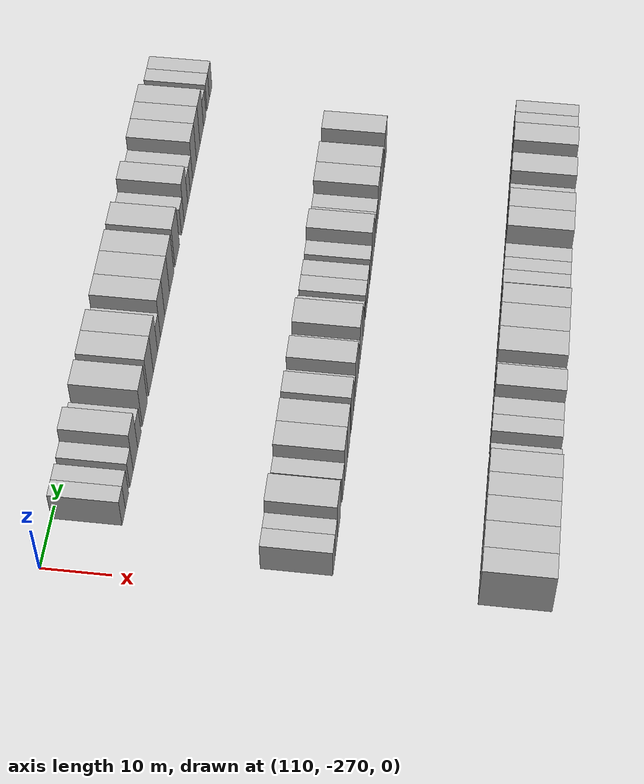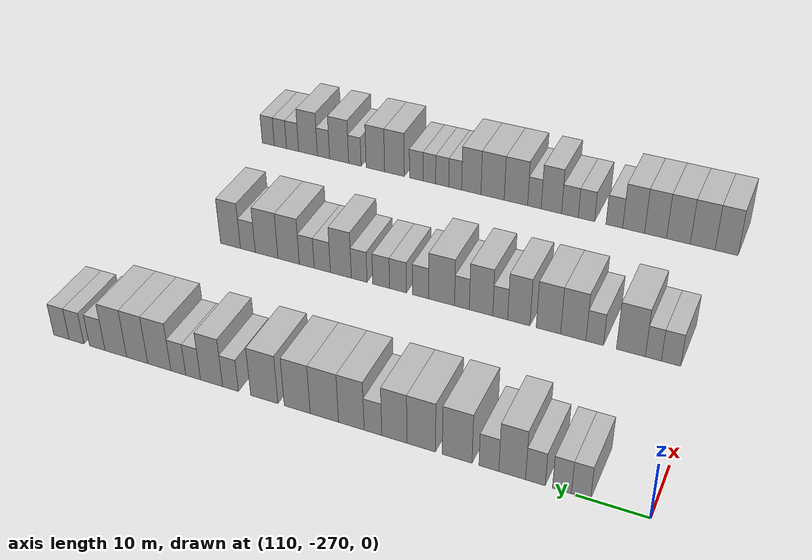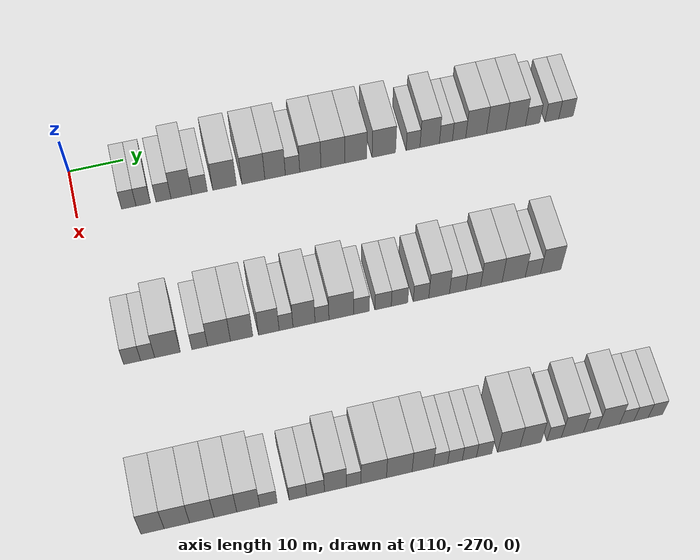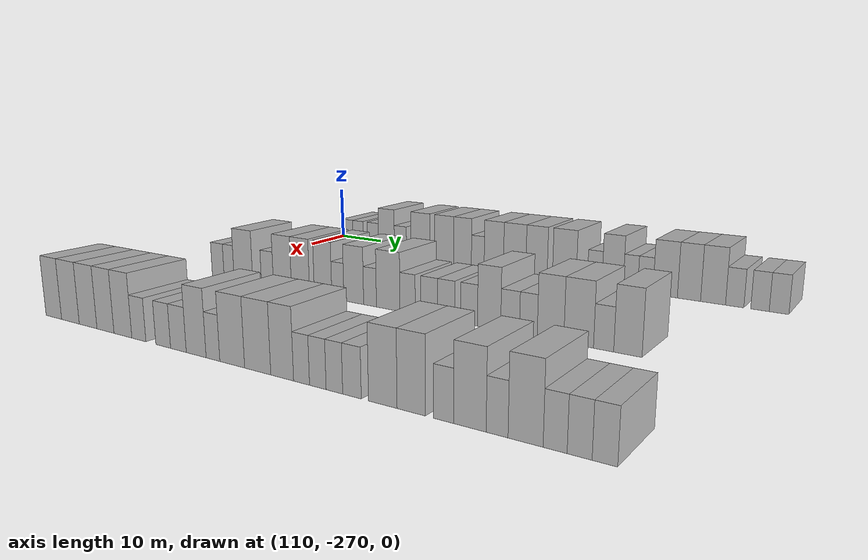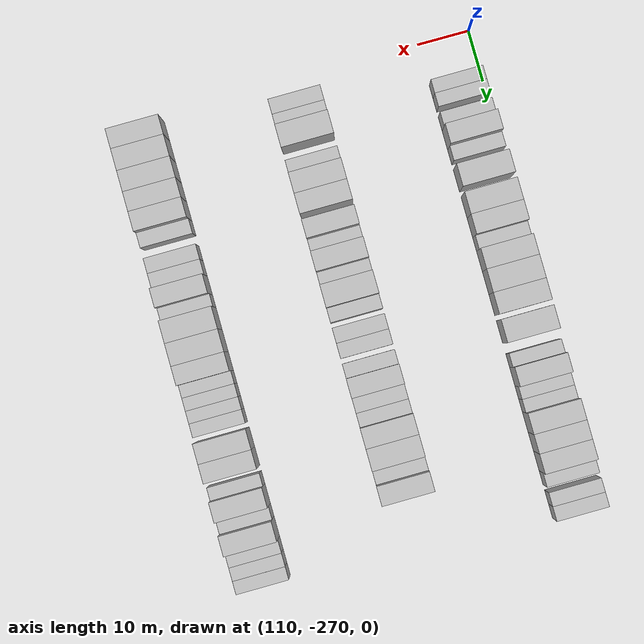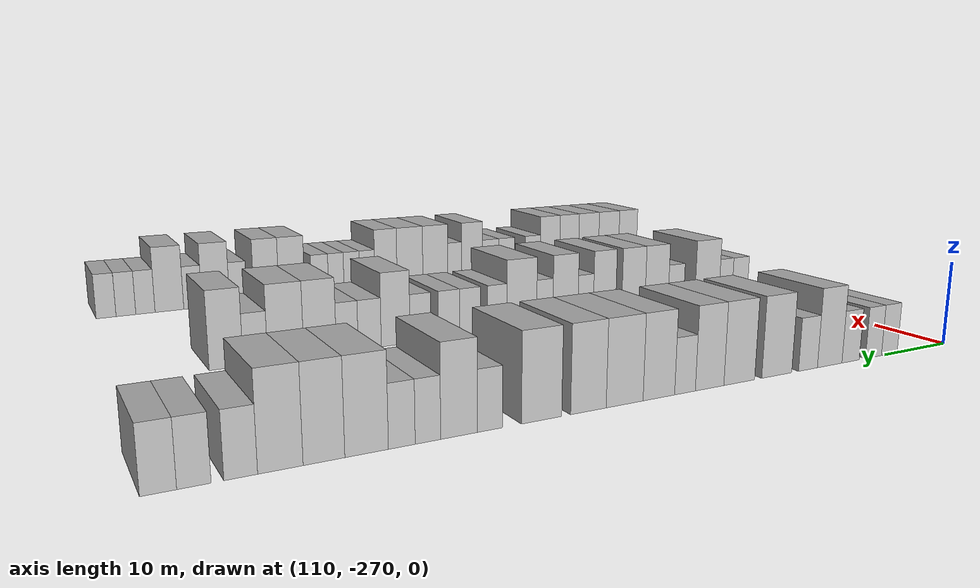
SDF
<sdf version="1.6">
 <world name="default">
  <model name="building_725">
   <static>1</static>
   <pose>115.0000 -260.6614 0 0.000000 0.000000 0.000000</pose>
   <link name="link">
    <pose>0 0 3.00 0 0 0</pose>
    <collision name="collision"><geometry><box><size>10.0000 2.6277 6.0000</size></box></geometry></collision>
    <visual name="visual">
     <cast_shadows>0</cast_shadows>
     <geometry><box><size>10.0000 2.6277 6.0000</size></box></geometry>
     <material>
      <script>
       <uri>model://HANNAS_wall/materials/scripts</uri>
       <uri>model://HANNAS_wall/materials/textures</uri>
       <name>vrc/HANNAS_wall</name>
      </script>
     </material>
    </visual>
   </link>
  </model>
  <model name="building_726">
   <static>1</static>
   <pose>115.0000 -258.0418 0 0.000000 0.000000 0.000000</pose>
   <link name="link">
    <pose>0 0 3.00 0 0 0</pose>
    <collision name="collision"><geometry><box><size>10.0000 2.6117 6.0000</size></box></geometry></collision>
    <visual name="visual">
     <cast_shadows>0</cast_shadows>
     <geometry><box><size>10.0000 2.6117 6.0000</size></box></geometry>
     <material>
      <script>
       <uri>model://HANNAS_wall/materials/scripts</uri>
       <uri>model://HANNAS_wall/materials/textures</uri>
       <name>vrc/HANNAS_wall</name>
      </script>
     </material>
    </visual>
   </link>
  </model>
  <model name="building_727">
   <static>1</static>
   <pose>115.0000 -254.3580 0 0.000000 0.000000 0.000000</pose>
   <link name="link">
    <pose>0 0 3.00 0 0 0</pose>
    <collision name="collision"><geometry><box><size>10.0000 2.7559 6.0000</size></box></geometry></collision>
    <visual name="visual">
     <cast_shadows>0</cast_shadows>
     <geometry><box><size>10.0000 2.7559 6.0000</size></box></geometry>
     <material>
      <script>
       <uri>model://HANNAS_wall/materials/scripts</uri>
       <uri>model://HANNAS_wall/materials/textures</uri>
       <name>vrc/HANNAS_wall</name>
      </script>
     </material>
    </visual>
   </link>
  </model>
  <model name="building_728">
   <static>1</static>
   <pose>115.0000 -251.0845 0 0.000000 0.000000 0.000000</pose>
   <link name="link">
    <pose>0 0 4.50 0 0 0</pose>
    <collision name="collision"><geometry><box><size>10.0000 3.7910 9.0000</size></box></geometry></collision>
    <visual name="visual">
     <cast_shadows>0</cast_shadows>
     <geometry><box><size>10.0000 3.7910 9.0000</size></box></geometry>
     <material>
      <script>
       <uri>model://HANNAS_wall/materials/scripts</uri>
       <uri>model://HANNAS_wall/materials/textures</uri>
       <name>vrc/HANNAS_wall</name>
      </script>
     </material>
    </visual>
   </link>
  </model>
  <model name="building_729">
   <static>1</static>
   <pose>115.0000 -247.7703 0 0.000000 0.000000 0.000000</pose>
   <link name="link">
    <pose>0 0 3.00 0 0 0</pose>
    <collision name="collision"><geometry><box><size>10.0000 2.8375 6.0000</size></box></geometry></collision>
    <visual name="visual">
     <cast_shadows>0</cast_shadows>
     <geometry><box><size>10.0000 2.8375 6.0000</size></box></geometry>
     <material>
      <script>
       <uri>model://HANNAS_wall/materials/scripts</uri>
       <uri>model://HANNAS_wall/materials/textures</uri>
       <name>vrc/HANNAS_wall</name>
      </script>
     </material>
    </visual>
   </link>
  </model>
  <model name="building_730">
   <static>1</static>
   <pose>115.0000 -243.1826 0 0.000000 0.000000 0.000000</pose>
   <link name="link">
    <pose>0 0 4.50 0 0 0</pose>
    <collision name="collision"><geometry><box><size>10.0000 4.3378 9.0000</size></box></geometry></collision>
    <visual name="visual">
     <cast_shadows>0</cast_shadows>
     <geometry><box><size>10.0000 4.3378 9.0000</size></box></geometry>
     <material>
      <script>
       <uri>model://HANNAS_wall/materials/scripts</uri>
       <uri>model://HANNAS_wall/materials/textures</uri>
       <name>vrc/HANNAS_wall</name>
      </script>
     </material>
    </visual>
   </link>
  </model>
  <model name="building_731">
   <static>1</static>
   <pose>115.0000 -237.8937 0 0.000000 0.000000 0.000000</pose>
   <link name="link">
    <pose>0 0 4.50 0 0 0</pose>
    <collision name="collision"><geometry><box><size>10.0000 4.2400 9.0000</size></box></geometry></collision>
    <visual name="visual">
     <cast_shadows>0</cast_shadows>
     <geometry><box><size>10.0000 4.2400 9.0000</size></box></geometry>
     <material>
      <script>
       <uri>model://HANNAS_wall/materials/scripts</uri>
       <uri>model://HANNAS_wall/materials/textures</uri>
       <name>vrc/HANNAS_wall</name>
      </script>
     </material>
    </visual>
   </link>
  </model>
  <model name="building_732">
   <static>1</static>
   <pose>115.0000 -233.8775 0 0.000000 0.000000 0.000000</pose>
   <link name="link">
    <pose>0 0 4.50 0 0 0</pose>
    <collision name="collision"><geometry><box><size>10.0000 3.7924 9.0000</size></box></geometry></collision>
    <visual name="visual">
     <cast_shadows>0</cast_shadows>
     <geometry><box><size>10.0000 3.7924 9.0000</size></box></geometry>
     <material>
      <script>
       <uri>model://HANNAS_wall/materials/scripts</uri>
       <uri>model://HANNAS_wall/materials/textures</uri>
       <name>vrc/HANNAS_wall</name>
      </script>
     </material>
    </visual>
   </link>
  </model>
  <model name="building_733">
   <static>1</static>
   <pose>115.0000 -230.6448 0 0.000000 0.000000 0.000000</pose>
   <link name="link">
    <pose>0 0 3.00 0 0 0</pose>
    <collision name="collision"><geometry><box><size>10.0000 2.6730 6.0000</size></box></geometry></collision>
    <visual name="visual">
     <cast_shadows>0</cast_shadows>
     <geometry><box><size>10.0000 2.6730 6.0000</size></box></geometry>
     <material>
      <script>
       <uri>model://HANNAS_wall/materials/scripts</uri>
       <uri>model://HANNAS_wall/materials/textures</uri>
       <name>vrc/HANNAS_wall</name>
      </script>
     </material>
    </visual>
   </link>
  </model>
  <model name="building_734">
   <static>1</static>
   <pose>115.0000 -227.3351 0 0.000000 0.000000 0.000000</pose>
   <link name="link">
    <pose>0 0 4.50 0 0 0</pose>
    <collision name="collision"><geometry><box><size>10.0000 3.9464 9.0000</size></box></geometry></collision>
    <visual name="visual">
     <cast_shadows>0</cast_shadows>
     <geometry><box><size>10.0000 3.9464 9.0000</size></box></geometry>
     <material>
      <script>
       <uri>model://HANNAS_wall/materials/scripts</uri>
       <uri>model://HANNAS_wall/materials/textures</uri>
       <name>vrc/HANNAS_wall</name>
      </script>
     </material>
    </visual>
   </link>
  </model>
  <model name="building_735">
   <static>1</static>
   <pose>115.0000 -223.1429 0 0.000000 0.000000 0.000000</pose>
   <link name="link">
    <pose>0 0 4.50 0 0 0</pose>
    <collision name="collision"><geometry><box><size>10.0000 4.4381 9.0000</size></box></geometry></collision>
    <visual name="visual">
     <cast_shadows>0</cast_shadows>
     <geometry><box><size>10.0000 4.4381 9.0000</size></box></geometry>
     <material>
      <script>
       <uri>model://HANNAS_wall/materials/scripts</uri>
       <uri>model://HANNAS_wall/materials/textures</uri>
       <name>vrc/HANNAS_wall</name>
      </script>
     </material>
    </visual>
   </link>
  </model>
  <model name="building_736">
   <static>1</static>
   <pose>115.0000 -218.8723 0 0.000000 0.000000 0.000000</pose>
   <link name="link">
    <pose>0 0 4.50 0 0 0</pose>
    <collision name="collision"><geometry><box><size>10.0000 4.1030 9.0000</size></box></geometry></collision>
    <visual name="visual">
     <cast_shadows>0</cast_shadows>
     <geometry><box><size>10.0000 4.1030 9.0000</size></box></geometry>
     <material>
      <script>
       <uri>model://HANNAS_wall/materials/scripts</uri>
       <uri>model://HANNAS_wall/materials/textures</uri>
       <name>vrc/HANNAS_wall</name>
      </script>
     </material>
    </visual>
   </link>
  </model>
  <model name="building_737">
   <static>1</static>
   <pose>115.0000 -213.6167 0 0.000000 0.000000 0.000000</pose>
   <link name="link">
    <pose>0 0 4.50 0 0 0</pose>
    <collision name="collision"><geometry><box><size>10.0000 4.4082 9.0000</size></box></geometry></collision>
    <visual name="visual">
     <cast_shadows>0</cast_shadows>
     <geometry><box><size>10.0000 4.4082 9.0000</size></box></geometry>
     <material>
      <script>
       <uri>model://HANNAS_wall/materials/scripts</uri>
       <uri>model://HANNAS_wall/materials/textures</uri>
       <name>vrc/HANNAS_wall</name>
      </script>
     </material>
    </visual>
   </link>
  </model>
  <model name="building_738">
   <static>1</static>
   <pose>115.0000 -208.1112 0 0.000000 0.000000 0.000000</pose>
   <link name="link">
    <pose>0 0 3.00 0 0 0</pose>
    <collision name="collision"><geometry><box><size>10.0000 2.6029 6.0000</size></box></geometry></collision>
    <visual name="visual">
     <cast_shadows>0</cast_shadows>
     <geometry><box><size>10.0000 2.6029 6.0000</size></box></geometry>
     <material>
      <script>
       <uri>model://HANNAS_wall/materials/scripts</uri>
       <uri>model://HANNAS_wall/materials/textures</uri>
       <name>vrc/HANNAS_wall</name>
      </script>
     </material>
    </visual>
   </link>
  </model>
  <model name="building_739">
   <static>1</static>
   <pose>115.0000 -204.9711 0 0.000000 0.000000 0.000000</pose>
   <link name="link">
    <pose>0 0 4.50 0 0 0</pose>
    <collision name="collision"><geometry><box><size>10.0000 3.6773 9.0000</size></box></geometry></collision>
    <visual name="visual">
     <cast_shadows>0</cast_shadows>
     <geometry><box><size>10.0000 3.6773 9.0000</size></box></geometry>
     <material>
      <script>
       <uri>model://HANNAS_wall/materials/scripts</uri>
       <uri>model://HANNAS_wall/materials/textures</uri>
       <name>vrc/HANNAS_wall</name>
      </script>
     </material>
    </visual>
   </link>
  </model>
  <model name="building_740">
   <static>1</static>
   <pose>115.0000 -201.8967 0 0.000000 0.000000 0.000000</pose>
   <link name="link">
    <pose>0 0 3.00 0 0 0</pose>
    <collision name="collision"><geometry><box><size>10.0000 2.4714 6.0000</size></box></geometry></collision>
    <visual name="visual">
     <cast_shadows>0</cast_shadows>
     <geometry><box><size>10.0000 2.4714 6.0000</size></box></geometry>
     <material>
      <script>
       <uri>model://HANNAS_wall/materials/scripts</uri>
       <uri>model://HANNAS_wall/materials/textures</uri>
       <name>vrc/HANNAS_wall</name>
      </script>
     </material>
    </visual>
   </link>
  </model>
  <model name="building_741">
   <static>1</static>
   <pose>115.0000 -199.3958 0 0.000000 0.000000 0.000000</pose>
   <link name="link">
    <pose>0 0 3.00 0 0 0</pose>
    <collision name="collision"><geometry><box><size>10.0000 2.5304 6.0000</size></box></geometry></collision>
    <visual name="visual">
     <cast_shadows>0</cast_shadows>
     <geometry><box><size>10.0000 2.5304 6.0000</size></box></geometry>
     <material>
      <script>
       <uri>model://HANNAS_wall/materials/scripts</uri>
       <uri>model://HANNAS_wall/materials/textures</uri>
       <name>vrc/HANNAS_wall</name>
      </script>
     </material>
    </visual>
   </link>
  </model>
  <model name="building_742">
   <static>1</static>
   <pose>115.0000 -196.1469 0 0.000000 0.000000 0.000000</pose>
   <link name="link">
    <pose>0 0 4.50 0 0 0</pose>
    <collision name="collision"><geometry><box><size>10.0000 3.9674 9.0000</size></box></geometry></collision>
    <visual name="visual">
     <cast_shadows>0</cast_shadows>
     <geometry><box><size>10.0000 3.9674 9.0000</size></box></geometry>
     <material>
      <script>
       <uri>model://HANNAS_wall/materials/scripts</uri>
       <uri>model://HANNAS_wall/materials/textures</uri>
       <name>vrc/HANNAS_wall</name>
      </script>
     </material>
    </visual>
   </link>
  </model>
  <model name="building_743">
   <static>1</static>
   <pose>115.0000 -192.3404 0 0.000000 0.000000 0.000000</pose>
   <link name="link">
    <pose>0 0 4.50 0 0 0</pose>
    <collision name="collision"><geometry><box><size>10.0000 3.6456 9.0000</size></box></geometry></collision>
    <visual name="visual">
     <cast_shadows>0</cast_shadows>
     <geometry><box><size>10.0000 3.6456 9.0000</size></box></geometry>
     <material>
      <script>
       <uri>model://HANNAS_wall/materials/scripts</uri>
       <uri>model://HANNAS_wall/materials/textures</uri>
       <name>vrc/HANNAS_wall</name>
      </script>
     </material>
    </visual>
   </link>
  </model>
  <model name="building_744">
   <static>1</static>
   <pose>115.0000 -188.6129 0 0.000000 0.000000 0.000000</pose>
   <link name="link">
    <pose>0 0 4.50 0 0 0</pose>
    <collision name="collision"><geometry><box><size>10.0000 3.8093 9.0000</size></box></geometry></collision>
    <visual name="visual">
     <cast_shadows>0</cast_shadows>
     <geometry><box><size>10.0000 3.8093 9.0000</size></box></geometry>
     <material>
      <script>
       <uri>model://HANNAS_wall/materials/scripts</uri>
       <uri>model://HANNAS_wall/materials/textures</uri>
       <name>vrc/HANNAS_wall</name>
      </script>
     </material>
    </visual>
   </link>
  </model>
  <model name="building_745">
   <static>1</static>
   <pose>115.0000 -185.3458 0 0.000000 0.000000 0.000000</pose>
   <link name="link">
    <pose>0 0 3.00 0 0 0</pose>
    <collision name="collision"><geometry><box><size>10.0000 2.7248 6.0000</size></box></geometry></collision>
    <visual name="visual">
     <cast_shadows>0</cast_shadows>
     <geometry><box><size>10.0000 2.7248 6.0000</size></box></geometry>
     <material>
      <script>
       <uri>model://HANNAS_wall/materials/scripts</uri>
       <uri>model://HANNAS_wall/materials/textures</uri>
       <name>vrc/HANNAS_wall</name>
      </script>
     </material>
    </visual>
   </link>
  </model>
  <model name="building_746">
   <static>1</static>
   <pose>115.0000 -181.6528 0 0.000000 0.000000 0.000000</pose>
   <link name="link">
    <pose>0 0 3.00 0 0 0</pose>
    <collision name="collision"><geometry><box><size>10.0000 2.6613 6.0000</size></box></geometry></collision>
    <visual name="visual">
     <cast_shadows>0</cast_shadows>
     <geometry><box><size>10.0000 2.6613 6.0000</size></box></geometry>
     <material>
      <script>
       <uri>model://HANNAS_wall/materials/scripts</uri>
       <uri>model://HANNAS_wall/materials/textures</uri>
       <name>vrc/HANNAS_wall</name>
      </script>
     </material>
    </visual>
   </link>
  </model>
  <model name="building_747">
   <static>1</static>
   <pose>115.0000 -178.9290 0 0.000000 0.000000 0.000000</pose>
   <link name="link">
    <pose>0 0 3.00 0 0 0</pose>
    <collision name="collision"><geometry><box><size>10.0000 2.7862 6.0000</size></box></geometry></collision>
    <visual name="visual">
     <cast_shadows>0</cast_shadows>
     <geometry><box><size>10.0000 2.7862 6.0000</size></box></geometry>
     <material>
      <script>
       <uri>model://HANNAS_wall/materials/scripts</uri>
       <uri>model://HANNAS_wall/materials/textures</uri>
       <name>vrc/HANNAS_wall</name>
      </script>
     </material>
    </visual>
   </link>
  </model>
  <model name="building_962">
   <static>1</static>
   <pose>145.0000 -265.1742 0 0.000000 0.000000 0.000000</pose>
   <link name="link">
    <pose>0 0 3.00 0 0 0</pose>
    <collision name="collision"><geometry><box><size>10.0000 2.9158 6.0000</size></box></geometry></collision>
    <visual name="visual">
     <cast_shadows>0</cast_shadows>
     <geometry><box><size>10.0000 2.9158 6.0000</size></box></geometry>
     <material>
      <script>
       <uri>model://HANNAS_wall/materials/scripts</uri>
       <uri>model://HANNAS_wall/materials/textures</uri>
       <name>vrc/HANNAS_wall</name>
      </script>
     </material>
    </visual>
   </link>
  </model>
  <model name="building_963">
   <static>1</static>
   <pose>145.0000 -262.4996 0 0.000000 0.000000 0.000000</pose>
   <link name="link">
    <pose>0 0 3.00 0 0 0</pose>
    <collision name="collision"><geometry><box><size>10.0000 2.4335 6.0000</size></box></geometry></collision>
    <visual name="visual">
     <cast_shadows>0</cast_shadows>
     <geometry><box><size>10.0000 2.4335 6.0000</size></box></geometry>
     <material>
      <script>
       <uri>model://HANNAS_wall/materials/scripts</uri>
       <uri>model://HANNAS_wall/materials/textures</uri>
       <name>vrc/HANNAS_wall</name>
      </script>
     </material>
    </visual>
   </link>
  </model>
  <model name="building_964">
   <static>1</static>
   <pose>145.0000 -259.0726 0 0.000000 0.000000 0.000000</pose>
   <link name="link">
    <pose>0 0 4.50 0 0 0</pose>
    <collision name="collision"><geometry><box><size>10.0000 4.4205 9.0000</size></box></geometry></collision>
    <visual name="visual">
     <cast_shadows>0</cast_shadows>
     <geometry><box><size>10.0000 4.4205 9.0000</size></box></geometry>
     <material>
      <script>
       <uri>model://HANNAS_wall/materials/scripts</uri>
       <uri>model://HANNAS_wall/materials/textures</uri>
       <name>vrc/HANNAS_wall</name>
      </script>
     </material>
    </visual>
   </link>
  </model>
  <model name="building_965">
   <static>1</static>
   <pose>145.0000 -253.4943 0 0.000000 0.000000 0.000000</pose>
   <link name="link">
    <pose>0 0 3.00 0 0 0</pose>
    <collision name="collision"><geometry><box><size>10.0000 2.7362 6.0000</size></box></geometry></collision>
    <visual name="visual">
     <cast_shadows>0</cast_shadows>
     <geometry><box><size>10.0000 2.7362 6.0000</size></box></geometry>
     <material>
      <script>
       <uri>model://HANNAS_wall/materials/scripts</uri>
       <uri>model://HANNAS_wall/materials/textures</uri>
       <name>vrc/HANNAS_wall</name>
      </script>
     </material>
    </visual>
   </link>
  </model>
  <model name="building_966">
   <static>1</static>
   <pose>145.0000 -250.1337 0 0.000000 0.000000 0.000000</pose>
   <link name="link">
    <pose>0 0 4.50 0 0 0</pose>
    <collision name="collision"><geometry><box><size>10.0000 3.9850 9.0000</size></box></geometry></collision>
    <visual name="visual">
     <cast_shadows>0</cast_shadows>
     <geometry><box><size>10.0000 3.9850 9.0000</size></box></geometry>
     <material>
      <script>
       <uri>model://HANNAS_wall/materials/scripts</uri>
       <uri>model://HANNAS_wall/materials/textures</uri>
       <name>vrc/HANNAS_wall</name>
      </script>
     </material>
    </visual>
   </link>
  </model>
  <model name="building_967">
   <static>1</static>
   <pose>145.0000 -246.1934 0 0.000000 0.000000 0.000000</pose>
   <link name="link">
    <pose>0 0 4.50 0 0 0</pose>
    <collision name="collision"><geometry><box><size>10.0000 3.8955 9.0000</size></box></geometry></collision>
    <visual name="visual">
     <cast_shadows>0</cast_shadows>
     <geometry><box><size>10.0000 3.8955 9.0000</size></box></geometry>
     <material>
      <script>
       <uri>model://HANNAS_wall/materials/scripts</uri>
       <uri>model://HANNAS_wall/materials/textures</uri>
       <name>vrc/HANNAS_wall</name>
      </script>
     </material>
    </visual>
   </link>
  </model>
  <model name="building_968">
   <static>1</static>
   <pose>145.0000 -241.4387 0 0.000000 0.000000 0.000000</pose>
   <link name="link">
    <pose>0 0 4.50 0 0 0</pose>
    <collision name="collision"><geometry><box><size>10.0000 3.6140 9.0000</size></box></geometry></collision>
    <visual name="visual">
     <cast_shadows>0</cast_shadows>
     <geometry><box><size>10.0000 3.6140 9.0000</size></box></geometry>
     <material>
      <script>
       <uri>model://HANNAS_wall/materials/scripts</uri>
       <uri>model://HANNAS_wall/materials/textures</uri>
       <name>vrc/HANNAS_wall</name>
      </script>
     </material>
    </visual>
   </link>
  </model>
  <model name="building_969">
   <static>1</static>
   <pose>145.0000 -238.4109 0 0.000000 0.000000 0.000000</pose>
   <link name="link">
    <pose>0 0 3.00 0 0 0</pose>
    <collision name="collision"><geometry><box><size>10.0000 2.4414 6.0000</size></box></geometry></collision>
    <visual name="visual">
     <cast_shadows>0</cast_shadows>
     <geometry><box><size>10.0000 2.4414 6.0000</size></box></geometry>
     <material>
      <script>
       <uri>model://HANNAS_wall/materials/scripts</uri>
       <uri>model://HANNAS_wall/materials/textures</uri>
       <name>vrc/HANNAS_wall</name>
      </script>
     </material>
    </visual>
   </link>
  </model>
  <model name="building_970">
   <static>1</static>
   <pose>145.0000 -235.2523 0 0.000000 0.000000 0.000000</pose>
   <link name="link">
    <pose>0 0 4.50 0 0 0</pose>
    <collision name="collision"><geometry><box><size>10.0000 3.8757 9.0000</size></box></geometry></collision>
    <visual name="visual">
     <cast_shadows>0</cast_shadows>
     <geometry><box><size>10.0000 3.8757 9.0000</size></box></geometry>
     <material>
      <script>
       <uri>model://HANNAS_wall/materials/scripts</uri>
       <uri>model://HANNAS_wall/materials/textures</uri>
       <name>vrc/HANNAS_wall</name>
      </script>
     </material>
    </visual>
   </link>
  </model>
  <model name="building_971">
   <static>1</static>
   <pose>145.0000 -232.0861 0 0.000000 0.000000 0.000000</pose>
   <link name="link">
    <pose>0 0 3.00 0 0 0</pose>
    <collision name="collision"><geometry><box><size>10.0000 2.4568 6.0000</size></box></geometry></collision>
    <visual name="visual">
     <cast_shadows>0</cast_shadows>
     <geometry><box><size>10.0000 2.4568 6.0000</size></box></geometry>
     <material>
      <script>
       <uri>model://HANNAS_wall/materials/scripts</uri>
       <uri>model://HANNAS_wall/materials/textures</uri>
       <name>vrc/HANNAS_wall</name>
      </script>
     </material>
    </visual>
   </link>
  </model>
  <model name="building_972">
   <static>1</static>
   <pose>145.0000 -228.6676 0 0.000000 0.000000 0.000000</pose>
   <link name="link">
    <pose>0 0 4.50 0 0 0</pose>
    <collision name="collision"><geometry><box><size>10.0000 4.3801 9.0000</size></box></geometry></collision>
    <visual name="visual">
     <cast_shadows>0</cast_shadows>
     <geometry><box><size>10.0000 4.3801 9.0000</size></box></geometry>
     <material>
      <script>
       <uri>model://HANNAS_wall/materials/scripts</uri>
       <uri>model://HANNAS_wall/materials/textures</uri>
       <name>vrc/HANNAS_wall</name>
      </script>
     </material>
    </visual>
   </link>
  </model>
  <model name="building_973">
   <static>1</static>
   <pose>145.0000 -225.0924 0 0.000000 0.000000 0.000000</pose>
   <link name="link">
    <pose>0 0 3.00 0 0 0</pose>
    <collision name="collision"><geometry><box><size>10.0000 2.7704 6.0000</size></box></geometry></collision>
    <visual name="visual">
     <cast_shadows>0</cast_shadows>
     <geometry><box><size>10.0000 2.7704 6.0000</size></box></geometry>
     <material>
      <script>
       <uri>model://HANNAS_wall/materials/scripts</uri>
       <uri>model://HANNAS_wall/materials/textures</uri>
       <name>vrc/HANNAS_wall</name>
      </script>
     </material>
    </visual>
   </link>
  </model>
  <model name="building_974">
   <static>1</static>
   <pose>145.0000 -221.2460 0 0.000000 0.000000 0.000000</pose>
   <link name="link">
    <pose>0 0 3.00 0 0 0</pose>
    <collision name="collision"><geometry><box><size>10.0000 2.9225 6.0000</size></box></geometry></collision>
    <visual name="visual">
     <cast_shadows>0</cast_shadows>
     <geometry><box><size>10.0000 2.9225 6.0000</size></box></geometry>
     <material>
      <script>
       <uri>model://HANNAS_wall/materials/scripts</uri>
       <uri>model://HANNAS_wall/materials/textures</uri>
       <name>vrc/HANNAS_wall</name>
      </script>
     </material>
    </visual>
   </link>
  </model>
  <model name="building_975">
   <static>1</static>
   <pose>145.0000 -218.3224 0 0.000000 0.000000 0.000000</pose>
   <link name="link">
    <pose>0 0 3.00 0 0 0</pose>
    <collision name="collision"><geometry><box><size>10.0000 2.9247 6.0000</size></box></geometry></collision>
    <visual name="visual">
     <cast_shadows>0</cast_shadows>
     <geometry><box><size>10.0000 2.9247 6.0000</size></box></geometry>
     <material>
      <script>
       <uri>model://HANNAS_wall/materials/scripts</uri>
       <uri>model://HANNAS_wall/materials/textures</uri>
       <name>vrc/HANNAS_wall</name>
      </script>
     </material>
    </visual>
   </link>
  </model>
  <model name="building_976">
   <static>1</static>
   <pose>145.0000 -214.4735 0 0.000000 0.000000 0.000000</pose>
   <link name="link">
    <pose>0 0 3.00 0 0 0</pose>
    <collision name="collision"><geometry><box><size>10.0000 2.7730 6.0000</size></box></geometry></collision>
    <visual name="visual">
     <cast_shadows>0</cast_shadows>
     <geometry><box><size>10.0000 2.7730 6.0000</size></box></geometry>
     <material>
      <script>
       <uri>model://HANNAS_wall/materials/scripts</uri>
       <uri>model://HANNAS_wall/materials/textures</uri>
       <name>vrc/HANNAS_wall</name>
      </script>
     </material>
    </visual>
   </link>
  </model>
  <model name="building_977">
   <static>1</static>
   <pose>145.0000 -211.2244 0 0.000000 0.000000 0.000000</pose>
   <link name="link">
    <pose>0 0 4.50 0 0 0</pose>
    <collision name="collision"><geometry><box><size>10.0000 3.7254 9.0000</size></box></geometry></collision>
    <visual name="visual">
     <cast_shadows>0</cast_shadows>
     <geometry><box><size>10.0000 3.7254 9.0000</size></box></geometry>
     <material>
      <script>
       <uri>model://HANNAS_wall/materials/scripts</uri>
       <uri>model://HANNAS_wall/materials/textures</uri>
       <name>vrc/HANNAS_wall</name>
      </script>
     </material>
    </visual>
   </link>
  </model>
  <model name="building_978">
   <static>1</static>
   <pose>145.0000 -207.9054 0 0.000000 0.000000 0.000000</pose>
   <link name="link">
    <pose>0 0 3.00 0 0 0</pose>
    <collision name="collision"><geometry><box><size>10.0000 2.9127 6.0000</size></box></geometry></collision>
    <visual name="visual">
     <cast_shadows>0</cast_shadows>
     <geometry><box><size>10.0000 2.9127 6.0000</size></box></geometry>
     <material>
      <script>
       <uri>model://HANNAS_wall/materials/scripts</uri>
       <uri>model://HANNAS_wall/materials/textures</uri>
       <name>vrc/HANNAS_wall</name>
      </script>
     </material>
    </visual>
   </link>
  </model>
  <model name="building_979">
   <static>1</static>
   <pose>145.0000 -205.1039 0 0.000000 0.000000 0.000000</pose>
   <link name="link">
    <pose>0 0 3.00 0 0 0</pose>
    <collision name="collision"><geometry><box><size>10.0000 2.6902 6.0000</size></box></geometry></collision>
    <visual name="visual">
     <cast_shadows>0</cast_shadows>
     <geometry><box><size>10.0000 2.6902 6.0000</size></box></geometry>
     <material>
      <script>
       <uri>model://HANNAS_wall/materials/scripts</uri>
       <uri>model://HANNAS_wall/materials/textures</uri>
       <name>vrc/HANNAS_wall</name>
      </script>
     </material>
    </visual>
   </link>
  </model>
  <model name="building_980">
   <static>1</static>
   <pose>145.0000 -201.8045 0 0.000000 0.000000 0.000000</pose>
   <link name="link">
    <pose>0 0 4.50 0 0 0</pose>
    <collision name="collision"><geometry><box><size>10.0000 3.9087 9.0000</size></box></geometry></collision>
    <visual name="visual">
     <cast_shadows>0</cast_shadows>
     <geometry><box><size>10.0000 3.9087 9.0000</size></box></geometry>
     <material>
      <script>
       <uri>model://HANNAS_wall/materials/scripts</uri>
       <uri>model://HANNAS_wall/materials/textures</uri>
       <name>vrc/HANNAS_wall</name>
      </script>
     </material>
    </visual>
   </link>
  </model>
  <model name="building_981">
   <static>1</static>
   <pose>145.0000 -197.7500 0 0.000000 0.000000 0.000000</pose>
   <link name="link">
    <pose>0 0 4.50 0 0 0</pose>
    <collision name="collision"><geometry><box><size>10.0000 4.2001 9.0000</size></box></geometry></collision>
    <visual name="visual">
     <cast_shadows>0</cast_shadows>
     <geometry><box><size>10.0000 4.2001 9.0000</size></box></geometry>
     <material>
      <script>
       <uri>model://HANNAS_wall/materials/scripts</uri>
       <uri>model://HANNAS_wall/materials/textures</uri>
       <name>vrc/HANNAS_wall</name>
      </script>
     </material>
    </visual>
   </link>
  </model>
  <model name="building_982">
   <static>1</static>
   <pose>145.0000 -194.2685 0 0.000000 0.000000 0.000000</pose>
   <link name="link">
    <pose>0 0 3.00 0 0 0</pose>
    <collision name="collision"><geometry><box><size>10.0000 2.7630 6.0000</size></box></geometry></collision>
    <visual name="visual">
     <cast_shadows>0</cast_shadows>
     <geometry><box><size>10.0000 2.7630 6.0000</size></box></geometry>
     <material>
      <script>
       <uri>model://HANNAS_wall/materials/scripts</uri>
       <uri>model://HANNAS_wall/materials/textures</uri>
       <name>vrc/HANNAS_wall</name>
      </script>
     </material>
    </visual>
   </link>
  </model>
  <model name="building_983">
   <static>1</static>
   <pose>145.0000 -191.0099 0 0.000000 0.000000 0.000000</pose>
   <link name="link">
    <pose>0 0 4.50 0 0 0</pose>
    <collision name="collision"><geometry><box><size>10.0000 3.7541 9.0000</size></box></geometry></collision>
    <visual name="visual">
     <cast_shadows>0</cast_shadows>
     <geometry><box><size>10.0000 3.7541 9.0000</size></box></geometry>
     <material>
      <script>
       <uri>model://HANNAS_wall/materials/scripts</uri>
       <uri>model://HANNAS_wall/materials/textures</uri>
       <name>vrc/HANNAS_wall</name>
      </script>
     </material>
    </visual>
   </link>
  </model>
  <model name="building_1180">
   <static>1</static>
   <pose>175.0000 -266.9580 0 0.000000 0.000000 0.000000</pose>
   <link name="link">
    <pose>0 0 4.50 0 0 0</pose>
    <collision name="collision"><geometry><box><size>10.0000 3.7888 9.0000</size></box></geometry></collision>
    <visual name="visual">
     <cast_shadows>0</cast_shadows>
     <geometry><box><size>10.0000 3.7888 9.0000</size></box></geometry>
     <material>
      <script>
       <uri>model://HANNAS_wall/materials/scripts</uri>
       <uri>model://HANNAS_wall/materials/textures</uri>
       <name>vrc/HANNAS_wall</name>
      </script>
     </material>
    </visual>
   </link>
  </model>
  <model name="building_1181">
   <static>1</static>
   <pose>175.0000 -262.9842 0 0.000000 0.000000 0.000000</pose>
   <link name="link">
    <pose>0 0 4.50 0 0 0</pose>
    <collision name="collision"><geometry><box><size>10.0000 4.1588 9.0000</size></box></geometry></collision>
    <visual name="visual">
     <cast_shadows>0</cast_shadows>
     <geometry><box><size>10.0000 4.1588 9.0000</size></box></geometry>
     <material>
      <script>
       <uri>model://HANNAS_wall/materials/scripts</uri>
       <uri>model://HANNAS_wall/materials/textures</uri>
       <name>vrc/HANNAS_wall</name>
      </script>
     </material>
    </visual>
   </link>
  </model>
  <model name="building_1182">
   <static>1</static>
   <pose>175.0000 -258.8930 0 0.000000 0.000000 0.000000</pose>
   <link name="link">
    <pose>0 0 4.50 0 0 0</pose>
    <collision name="collision"><geometry><box><size>10.0000 4.0236 9.0000</size></box></geometry></collision>
    <visual name="visual">
     <cast_shadows>0</cast_shadows>
     <geometry><box><size>10.0000 4.0236 9.0000</size></box></geometry>
     <material>
      <script>
       <uri>model://HANNAS_wall/materials/scripts</uri>
       <uri>model://HANNAS_wall/materials/textures</uri>
       <name>vrc/HANNAS_wall</name>
      </script>
     </material>
    </visual>
   </link>
  </model>
  <model name="building_1183">
   <static>1</static>
   <pose>175.0000 -255.0095 0 0.000000 0.000000 0.000000</pose>
   <link name="link">
    <pose>0 0 4.50 0 0 0</pose>
    <collision name="collision"><geometry><box><size>10.0000 3.7435 9.0000</size></box></geometry></collision>
    <visual name="visual">
     <cast_shadows>0</cast_shadows>
     <geometry><box><size>10.0000 3.7435 9.0000</size></box></geometry>
     <material>
      <script>
       <uri>model://HANNAS_wall/materials/scripts</uri>
       <uri>model://HANNAS_wall/materials/textures</uri>
       <name>vrc/HANNAS_wall</name>
      </script>
     </material>
    </visual>
   </link>
  </model>
  <model name="building_1184">
   <static>1</static>
   <pose>175.0000 -251.2451 0 0.000000 0.000000 0.000000</pose>
   <link name="link">
    <pose>0 0 4.50 0 0 0</pose>
    <collision name="collision"><geometry><box><size>10.0000 3.7854 9.0000</size></box></geometry></collision>
    <visual name="visual">
     <cast_shadows>0</cast_shadows>
     <geometry><box><size>10.0000 3.7854 9.0000</size></box></geometry>
     <material>
      <script>
       <uri>model://HANNAS_wall/materials/scripts</uri>
       <uri>model://HANNAS_wall/materials/textures</uri>
       <name>vrc/HANNAS_wall</name>
      </script>
     </material>
    </visual>
   </link>
  </model>
  <model name="building_1185">
   <static>1</static>
   <pose>175.0000 -247.9066 0 0.000000 0.000000 0.000000</pose>
   <link name="link">
    <pose>0 0 3.00 0 0 0</pose>
    <collision name="collision"><geometry><box><size>10.0000 2.8914 6.0000</size></box></geometry></collision>
    <visual name="visual">
     <cast_shadows>0</cast_shadows>
     <geometry><box><size>10.0000 2.8914 6.0000</size></box></geometry>
     <material>
      <script>
       <uri>model://HANNAS_wall/materials/scripts</uri>
       <uri>model://HANNAS_wall/materials/textures</uri>
       <name>vrc/HANNAS_wall</name>
      </script>
     </material>
    </visual>
   </link>
  </model>
  <model name="building_1186">
   <static>1</static>
   <pose>175.0000 -243.0135 0 0.000000 0.000000 0.000000</pose>
   <link name="link">
    <pose>0 0 3.00 0 0 0</pose>
    <collision name="collision"><geometry><box><size>10.0000 2.8948 6.0000</size></box></geometry></collision>
    <visual name="visual">
     <cast_shadows>0</cast_shadows>
     <geometry><box><size>10.0000 2.8948 6.0000</size></box></geometry>
     <material>
      <script>
       <uri>model://HANNAS_wall/materials/scripts</uri>
       <uri>model://HANNAS_wall/materials/textures</uri>
       <name>vrc/HANNAS_wall</name>
      </script>
     </material>
    </visual>
   </link>
  </model>
  <model name="building_1187">
   <static>1</static>
   <pose>175.0000 -240.0733 0 0.000000 0.000000 0.000000</pose>
   <link name="link">
    <pose>0 0 3.00 0 0 0</pose>
    <collision name="collision"><geometry><box><size>10.0000 2.9858 6.0000</size></box></geometry></collision>
    <visual name="visual">
     <cast_shadows>0</cast_shadows>
     <geometry><box><size>10.0000 2.9858 6.0000</size></box></geometry>
     <material>
      <script>
       <uri>model://HANNAS_wall/materials/scripts</uri>
       <uri>model://HANNAS_wall/materials/textures</uri>
       <name>vrc/HANNAS_wall</name>
      </script>
     </material>
    </visual>
   </link>
  </model>
  <model name="building_1188">
   <static>1</static>
   <pose>175.0000 -236.7480 0 0.000000 0.000000 0.000000</pose>
   <link name="link">
    <pose>0 0 4.50 0 0 0</pose>
    <collision name="collision"><geometry><box><size>10.0000 3.6647 9.0000</size></box></geometry></collision>
    <visual name="visual">
     <cast_shadows>0</cast_shadows>
     <geometry><box><size>10.0000 3.6647 9.0000</size></box></geometry>
     <material>
      <script>
       <uri>model://HANNAS_wall/materials/scripts</uri>
       <uri>model://HANNAS_wall/materials/textures</uri>
       <name>vrc/HANNAS_wall</name>
      </script>
     </material>
    </visual>
   </link>
  </model>
  <model name="building_1189">
   <static>1</static>
   <pose>175.0000 -233.6890 0 0.000000 0.000000 0.000000</pose>
   <link name="link">
    <pose>0 0 3.00 0 0 0</pose>
    <collision name="collision"><geometry><box><size>10.0000 2.4534 6.0000</size></box></geometry></collision>
    <visual name="visual">
     <cast_shadows>0</cast_shadows>
     <geometry><box><size>10.0000 2.4534 6.0000</size></box></geometry>
     <material>
      <script>
       <uri>model://HANNAS_wall/materials/scripts</uri>
       <uri>model://HANNAS_wall/materials/textures</uri>
       <name>vrc/HANNAS_wall</name>
      </script>
     </material>
    </visual>
   </link>
  </model>
  <model name="building_1190">
   <static>1</static>
   <pose>175.0000 -230.3172 0 0.000000 0.000000 0.000000</pose>
   <link name="link">
    <pose>0 0 4.50 0 0 0</pose>
    <collision name="collision"><geometry><box><size>10.0000 4.2902 9.0000</size></box></geometry></collision>
    <visual name="visual">
     <cast_shadows>0</cast_shadows>
     <geometry><box><size>10.0000 4.2902 9.0000</size></box></geometry>
     <material>
      <script>
       <uri>model://HANNAS_wall/materials/scripts</uri>
       <uri>model://HANNAS_wall/materials/textures</uri>
       <name>vrc/HANNAS_wall</name>
      </script>
     </material>
    </visual>
   </link>
  </model>
  <model name="building_1191">
   <static>1</static>
   <pose>175.0000 -226.0100 0 0.000000 0.000000 0.000000</pose>
   <link name="link">
    <pose>0 0 4.50 0 0 0</pose>
    <collision name="collision"><geometry><box><size>10.0000 4.3242 9.0000</size></box></geometry></collision>
    <visual name="visual">
     <cast_shadows>0</cast_shadows>
     <geometry><box><size>10.0000 4.3242 9.0000</size></box></geometry>
     <material>
      <script>
       <uri>model://HANNAS_wall/materials/scripts</uri>
       <uri>model://HANNAS_wall/materials/textures</uri>
       <name>vrc/HANNAS_wall</name>
      </script>
     </material>
    </visual>
   </link>
  </model>
  <model name="building_1192">
   <static>1</static>
   <pose>175.0000 -222.0383 0 0.000000 0.000000 0.000000</pose>
   <link name="link">
    <pose>0 0 4.50 0 0 0</pose>
    <collision name="collision"><geometry><box><size>10.0000 3.6193 9.0000</size></box></geometry></collision>
    <visual name="visual">
     <cast_shadows>0</cast_shadows>
     <geometry><box><size>10.0000 3.6193 9.0000</size></box></geometry>
     <material>
      <script>
       <uri>model://HANNAS_wall/materials/scripts</uri>
       <uri>model://HANNAS_wall/materials/textures</uri>
       <name>vrc/HANNAS_wall</name>
      </script>
     </material>
    </visual>
   </link>
  </model>
  <model name="building_1193">
   <static>1</static>
   <pose>175.0000 -219.0087 0 0.000000 0.000000 0.000000</pose>
   <link name="link">
    <pose>0 0 3.00 0 0 0</pose>
    <collision name="collision"><geometry><box><size>10.0000 2.4399 6.0000</size></box></geometry></collision>
    <visual name="visual">
     <cast_shadows>0</cast_shadows>
     <geometry><box><size>10.0000 2.4399 6.0000</size></box></geometry>
     <material>
      <script>
       <uri>model://HANNAS_wall/materials/scripts</uri>
       <uri>model://HANNAS_wall/materials/textures</uri>
       <name>vrc/HANNAS_wall</name>
      </script>
     </material>
    </visual>
   </link>
  </model>
  <model name="building_1194">
   <static>1</static>
   <pose>175.0000 -216.5483 0 0.000000 0.000000 0.000000</pose>
   <link name="link">
    <pose>0 0 3.00 0 0 0</pose>
    <collision name="collision"><geometry><box><size>10.0000 2.4807 6.0000</size></box></geometry></collision>
    <visual name="visual">
     <cast_shadows>0</cast_shadows>
     <geometry><box><size>10.0000 2.4807 6.0000</size></box></geometry>
     <material>
      <script>
       <uri>model://HANNAS_wall/materials/scripts</uri>
       <uri>model://HANNAS_wall/materials/textures</uri>
       <name>vrc/HANNAS_wall</name>
      </script>
     </material>
    </visual>
   </link>
  </model>
  <model name="building_1195">
   <static>1</static>
   <pose>175.0000 -214.1054 0 0.000000 0.000000 0.000000</pose>
   <link name="link">
    <pose>0 0 3.00 0 0 0</pose>
    <collision name="collision"><geometry><box><size>10.0000 2.4052 6.0000</size></box></geometry></collision>
    <visual name="visual">
     <cast_shadows>0</cast_shadows>
     <geometry><box><size>10.0000 2.4052 6.0000</size></box></geometry>
     <material>
      <script>
       <uri>model://HANNAS_wall/materials/scripts</uri>
       <uri>model://HANNAS_wall/materials/textures</uri>
       <name>vrc/HANNAS_wall</name>
      </script>
     </material>
    </visual>
   </link>
  </model>
  <model name="building_1196">
   <static>1</static>
   <pose>175.0000 -211.5889 0 0.000000 0.000000 0.000000</pose>
   <link name="link">
    <pose>0 0 3.00 0 0 0</pose>
    <collision name="collision"><geometry><box><size>10.0000 2.6278 6.0000</size></box></geometry></collision>
    <visual name="visual">
     <cast_shadows>0</cast_shadows>
     <geometry><box><size>10.0000 2.6278 6.0000</size></box></geometry>
     <material>
      <script>
       <uri>model://HANNAS_wall/materials/scripts</uri>
       <uri>model://HANNAS_wall/materials/textures</uri>
       <name>vrc/HANNAS_wall</name>
      </script>
     </material>
    </visual>
   </link>
  </model>
  <model name="building_1197">
   <static>1</static>
   <pose>175.0000 -207.3536 0 0.000000 0.000000 0.000000</pose>
   <link name="link">
    <pose>0 0 4.50 0 0 0</pose>
    <collision name="collision"><geometry><box><size>10.0000 3.8427 9.0000</size></box></geometry></collision>
    <visual name="visual">
     <cast_shadows>0</cast_shadows>
     <geometry><box><size>10.0000 3.8427 9.0000</size></box></geometry>
     <material>
      <script>
       <uri>model://HANNAS_wall/materials/scripts</uri>
       <uri>model://HANNAS_wall/materials/textures</uri>
       <name>vrc/HANNAS_wall</name>
      </script>
     </material>
    </visual>
   </link>
  </model>
  <model name="building_1198">
   <static>1</static>
   <pose>175.0000 -203.6109 0 0.000000 0.000000 0.000000</pose>
   <link name="link">
    <pose>0 0 4.50 0 0 0</pose>
    <collision name="collision"><geometry><box><size>10.0000 3.6427 9.0000</size></box></geometry></collision>
    <visual name="visual">
     <cast_shadows>0</cast_shadows>
     <geometry><box><size>10.0000 3.6427 9.0000</size></box></geometry>
     <material>
      <script>
       <uri>model://HANNAS_wall/materials/scripts</uri>
       <uri>model://HANNAS_wall/materials/textures</uri>
       <name>vrc/HANNAS_wall</name>
      </script>
     </material>
    </visual>
   </link>
  </model>
  <model name="building_1199">
   <static>1</static>
   <pose>175.0000 -199.5491 0 0.000000 0.000000 0.000000</pose>
   <link name="link">
    <pose>0 0 3.00 0 0 0</pose>
    <collision name="collision"><geometry><box><size>10.0000 2.4808 6.0000</size></box></geometry></collision>
    <visual name="visual">
     <cast_shadows>0</cast_shadows>
     <geometry><box><size>10.0000 2.4808 6.0000</size></box></geometry>
     <material>
      <script>
       <uri>model://HANNAS_wall/materials/scripts</uri>
       <uri>model://HANNAS_wall/materials/textures</uri>
       <name>vrc/HANNAS_wall</name>
      </script>
     </material>
    </visual>
   </link>
  </model>
  <model name="building_1200">
   <static>1</static>
   <pose>175.0000 -196.3888 0 0.000000 0.000000 0.000000</pose>
   <link name="link">
    <pose>0 0 4.50 0 0 0</pose>
    <collision name="collision"><geometry><box><size>10.0000 3.8398 9.0000</size></box></geometry></collision>
    <visual name="visual">
     <cast_shadows>0</cast_shadows>
     <geometry><box><size>10.0000 3.8398 9.0000</size></box></geometry>
     <material>
      <script>
       <uri>model://HANNAS_wall/materials/scripts</uri>
       <uri>model://HANNAS_wall/materials/textures</uri>
       <name>vrc/HANNAS_wall</name>
      </script>
     </material>
    </visual>
   </link>
  </model>
  <model name="building_1201">
   <static>1</static>
   <pose>175.0000 -193.2294 0 0.000000 0.000000 0.000000</pose>
   <link name="link">
    <pose>0 0 3.00 0 0 0</pose>
    <collision name="collision"><geometry><box><size>10.0000 2.4791 6.0000</size></box></geometry></collision>
    <visual name="visual">
     <cast_shadows>0</cast_shadows>
     <geometry><box><size>10.0000 2.4791 6.0000</size></box></geometry>
     <material>
      <script>
       <uri>model://HANNAS_wall/materials/scripts</uri>
       <uri>model://HANNAS_wall/materials/textures</uri>
       <name>vrc/HANNAS_wall</name>
      </script>
     </material>
    </visual>
   </link>
  </model>
  <model name="building_1202">
   <static>1</static>
   <pose>175.0000 -190.0809 0 0.000000 0.000000 0.000000</pose>
   <link name="link">
    <pose>0 0 4.50 0 0 0</pose>
    <collision name="collision"><geometry><box><size>10.0000 3.8179 9.0000</size></box></geometry></collision>
    <visual name="visual">
     <cast_shadows>0</cast_shadows>
     <geometry><box><size>10.0000 3.8179 9.0000</size></box></geometry>
     <material>
      <script>
       <uri>model://HANNAS_wall/materials/scripts</uri>
       <uri>model://HANNAS_wall/materials/textures</uri>
       <name>vrc/HANNAS_wall</name>
      </script>
     </material>
    </visual>
   </link>
  </model>
  <model name="building_1203">
   <static>1</static>
   <pose>175.0000 -186.9190 0 0.000000 0.000000 0.000000</pose>
   <link name="link">
    <pose>0 0 3.00 0 0 0</pose>
    <collision name="collision"><geometry><box><size>10.0000 2.5059 6.0000</size></box></geometry></collision>
    <visual name="visual">
     <cast_shadows>0</cast_shadows>
     <geometry><box><size>10.0000 2.5059 6.0000</size></box></geometry>
     <material>
      <script>
       <uri>model://HANNAS_wall/materials/scripts</uri>
       <uri>model://HANNAS_wall/materials/textures</uri>
       <name>vrc/HANNAS_wall</name>
      </script>
     </material>
    </visual>
   </link>
  </model>
  <model name="building_1204">
   <static>1</static>
   <pose>175.0000 -184.4035 0 0.000000 0.000000 0.000000</pose>
   <link name="link">
    <pose>0 0 3.00 0 0 0</pose>
    <collision name="collision"><geometry><box><size>10.0000 2.5251 6.0000</size></box></geometry></collision>
    <visual name="visual">
     <cast_shadows>0</cast_shadows>
     <geometry><box><size>10.0000 2.5251 6.0000</size></box></geometry>
     <material>
      <script>
       <uri>model://HANNAS_wall/materials/scripts</uri>
       <uri>model://HANNAS_wall/materials/textures</uri>
       <name>vrc/HANNAS_wall</name>
      </script>
     </material>
    </visual>
   </link>
  </model>
  <model name="building_1205">
   <static>1</static>
   <pose>175.0000 -181.8876 0 0.000000 0.000000 0.000000</pose>
   <link name="link">
    <pose>0 0 3.00 0 0 0</pose>
    <collision name="collision"><geometry><box><size>10.0000 2.5066 6.0000</size></box></geometry></collision>
    <visual name="visual">
     <cast_shadows>0</cast_shadows>
     <geometry><box><size>10.0000 2.5066 6.0000</size></box></geometry>
     <material>
      <script>
       <uri>model://HANNAS_wall/materials/scripts</uri>
       <uri>model://HANNAS_wall/materials/textures</uri>
       <name>vrc/HANNAS_wall</name>
      </script>
     </material>
    </visual>
   </link>
  </model>
 </world>
</sdf>
